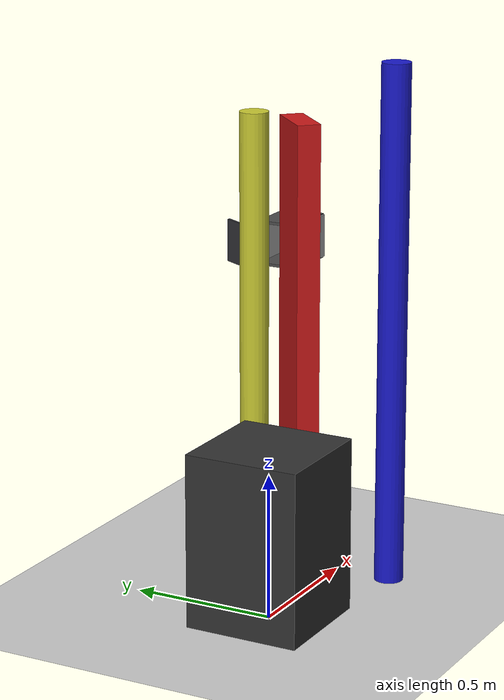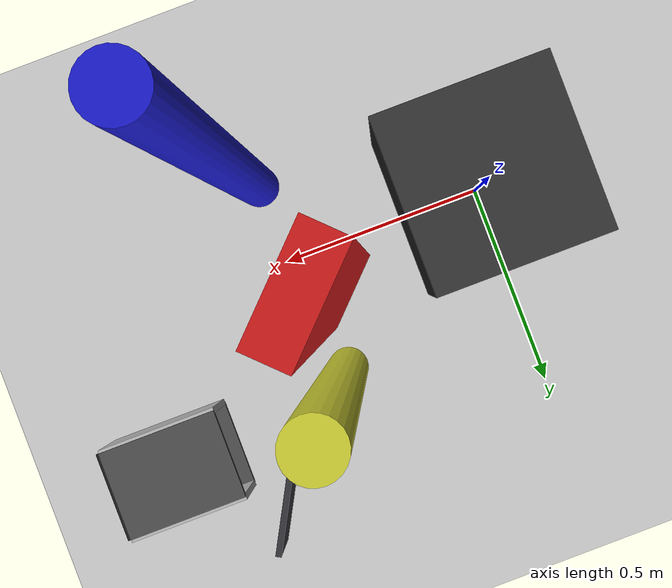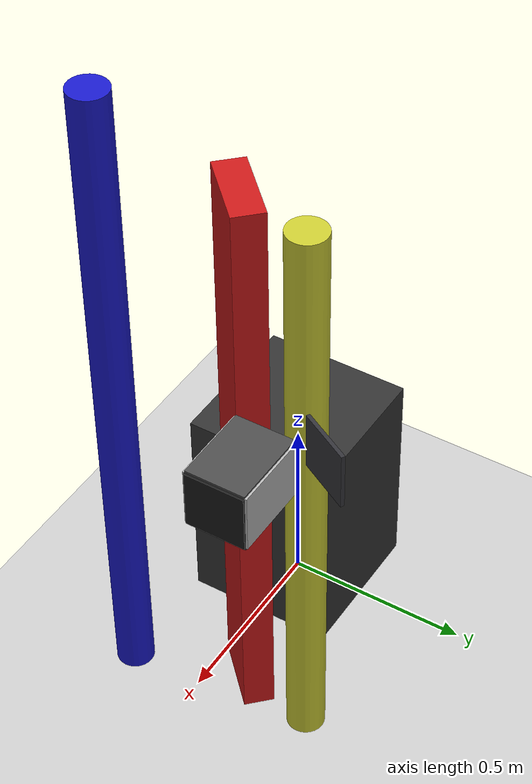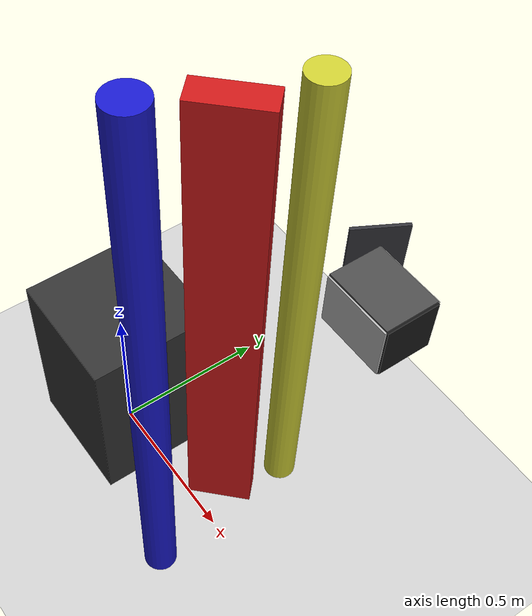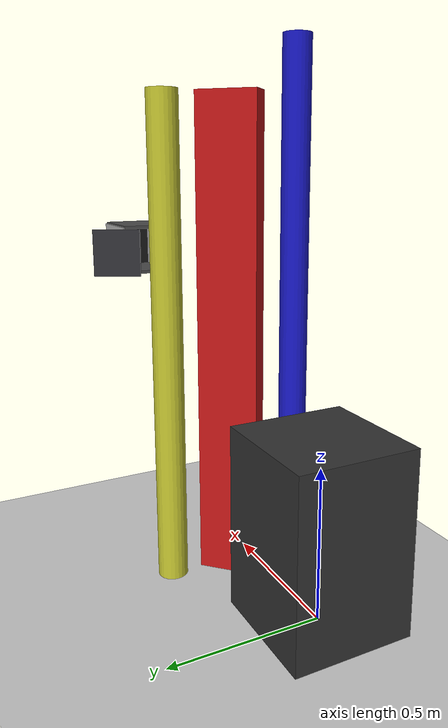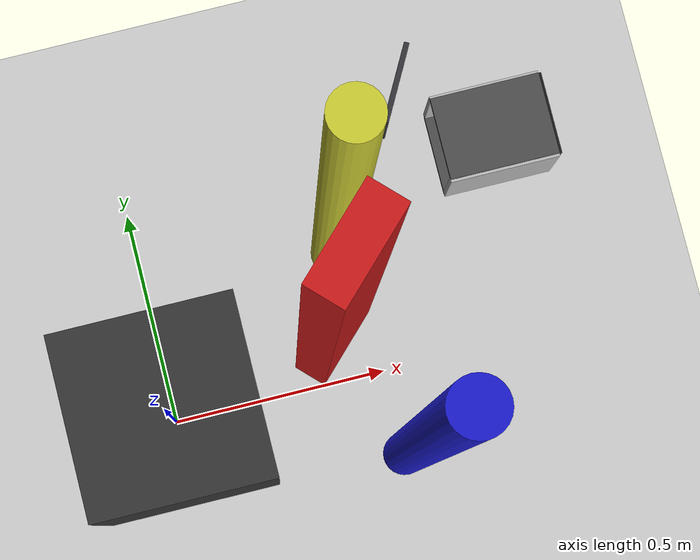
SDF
<?xml version="1.0" ?>
<sdf version="1.9">
  <world name="refuel_world">
    <physics name="1ms" type="ignored">
      <max_step_size>0.001</max_step_size>
      <real_time_factor>1.0</real_time_factor>
    </physics>

    <!-- Required Gz Sim system plugins -->
    <plugin filename="gz-sim-physics-system" name="gz::sim::systems::Physics"/>
    <plugin filename="gz-sim-user-commands-system" name="gz::sim::systems::UserCommands"/>
    <plugin filename="gz-sim-scene-broadcaster-system" name="gz::sim::systems::SceneBroadcaster"/>

    <!-- Sunlight -->
    <light type="directional" name="sun">
      <cast_shadows>true</cast_shadows>
      <pose>0 0 10 0 0 0</pose>
      <diffuse>0.8 0.8 0.8 1</diffuse>
      <specular>0.2 0.2 0.2 1</specular>
      <direction>-0.5 0.1 -0.9</direction>
    </light>

    <!-- Ground plane -->
    <model name="ground_plane">
      <static>true</static>
      <link name="link">
        <collision name="collision">
          <geometry><plane><normal>0 0 1</normal></plane></geometry>
        </collision>
        <visual name="visual">
          <geometry><plane><normal>0 0 1</normal><size>100 100</size></plane></geometry>
          <material><ambient>0.8 0.8 0.8 1</ambient><diffuse>0.8 0.8 0.8 1</diffuse></material>
        </visual>
      </link>
    </model>

    <!-- Robot Pedestal -->
    <model name="robot_pedestal">
      <static>true</static>
      <pose>0 0 0.3 0 0 0</pose>
      <link name="link">
        <visual name="visual">
          <geometry><box><size>0.4 0.4 0.6</size></box></geometry>
          <material><ambient>0.2 0.2 0.2 1</ambient><diffuse>0.2 0.2 0.2 1</diffuse></material>
        </visual>
        <collision name="collision">
          <geometry><box><size>0.4 0.4 0.6</size></box></geometry>
        </collision>
      </link>
    </model>

    <!-- SUV removed — fuel inlet serves as floating target marker -->

    <!-- Refined Concave Socket (Industrial Grade) -->
    <!-- Positioned precisely where the nozzle must enter -->
    <model name="hollow_refuel_inlet">
      <static>true</static>
      <pose>0.62 0.30 1.10 0 0 0</pose>
      <link name="inlet_body">
        <!-- Back Face (Goal) -->
        <visual name="back_visual">
          <pose>0.20 0 0 0 0 0</pose>
          <geometry><box><size>0.01 0.15 0.15</size></box></geometry>
          <material><ambient>0.1 0.1 0.1 1</ambient><diffuse>0.1 0.1 0.1 1</diffuse></material>
        </visual>
        <collision name="back_collision">
          <pose>0.20 0 0 0 0 0</pose>
          <geometry><box><size>0.01 0.15 0.15</size></box></geometry>
        </collision>
        <!-- Surround Walls (20cm Deep) -->
        <visual name="top_wall">
          <pose>0.10 0 0.075 0 0 0</pose>
          <geometry><box><size>0.20 0.15 0.01</size></box></geometry>
          <material><ambient>0.3 0.3 0.3 1</ambient><diffuse>0.3 0.3 0.3 1</diffuse></material>
        </visual>
        <collision name="top_wall_col">
          <pose>0.10 0 0.075 0 0 0</pose>
          <geometry><box><size>0.20 0.15 0.01</size></box></geometry>
        </collision>
        <visual name="bottom_wall">
          <pose>0.10 0 -0.075 0 0 0</pose>
          <geometry><box><size>0.20 0.15 0.01</size></box></geometry>
          <material><ambient>0.3 0.3 0.3 1</ambient><diffuse>0.3 0.3 0.3 1</diffuse></material>
        </visual>
        <collision name="bottom_wall_col">
          <pose>0.10 0 -0.075 0 0 0</pose>
          <geometry><box><size>0.20 0.15 0.01</size></box></geometry>
        </collision>
        <visual name="left_wall">
          <pose>0.10 0.075 0 0 0 0</pose>
          <geometry><box><size>0.20 0.01 0.15</size></box></geometry>
        </visual>
        <collision name="left_wall_col">
          <pose>0.10 0.075 0 0 0 0</pose>
          <geometry><box><size>0.20 0.01 0.15</size></box></geometry>
        </collision>
        <visual name="right_wall">
          <pose>0.10 -0.075 0 0 0 0</pose>
          <geometry><box><size>0.20 0.01 0.15</size></box></geometry>
        </visual>
        <collision name="right_wall_col">
          <pose>0.10 -0.075 0 0 0 0</pose>
          <geometry><box><size>0.20 0.01 0.15</size></box></geometry>
        </collision>
        <!-- Fuel Flap (Convex Obstacle) -->
        <!-- Poised as if the door is open but still obstructing the approach path -->
        <visual name="flap_visual">
          <pose>-0.05 0.12 0 0 0 -0.5</pose> <!-- Angled outwards -->
          <geometry><box><size>0.01 0.15 0.15</size></box></geometry>
          <material><ambient>0.2 0.2 0.22 1</ambient><diffuse>0.2 0.2 0.22 1</diffuse></material>
        </visual>
        <collision name="flap_collision">
          <pose>-0.05 0.12 0 0 0 -0.5</pose>
          <geometry><box><size>0.01 0.15 0.15</size></box></geometry>
        </collision>
      </link>
    </model>

    <!-- Industrial Obstacles (Non-Neural-Network Testbed) -->

    <!-- Static Rectangular Pillar (0.2 x 0.08) -->
    <model name="static_pillar">
      <static>true</static>
      <pose>0.4 0.1 0.8 0 0 0.785</pose> <!-- Rotated 45 deg -->
      <link name="link">
        <visual name="visual">
          <geometry><box><size>0.2 0.08 1.6</size></box></geometry>
          <material><ambient>0.8 0.1 0.1 1</ambient><diffuse>0.8 0.1 0.1 1</diffuse></material>
        </visual>
        <collision name="collision">
          <geometry><box><size>0.2 0.08 1.6</size></box></geometry>
        </collision>
      </link>
    </model>

    <!-- Static Cylinder -->
    <model name="static_cylinder">
      <static>true</static>
      <pose>0.5 -0.2 0.9 0 0 0</pose>
      <link name="link">
        <visual name="visual">
          <geometry><cylinder><radius>0.05</radius><length>1.8</length></cylinder></geometry>
          <material><ambient>0.1 0.1 0.8 1</ambient><diffuse>0.1 0.1 0.8 1</diffuse></material>
        </visual>
        <collision name="collision">
          <geometry><cylinder><radius>0.05</radius><length>1.8</length></cylinder></geometry>
        </collision>
      </link>
    </model>

    <!-- Oscillating Dynamic Cylinder (Prismatic) -->
    <model name="dynamic_cylinder">
      <pose>0.45 0.3 0.8 0 0 0</pose>
      <link name="link">
        <inertial>
          <mass>1.0</mass>
          <inertia><ixx>0.01</ixx><ixy>0</ixy><ixz>0</ixz><iyy>0.01</iyy><iyz>0</iyz><izz>0.01</izz></inertia>
        </inertial>
        <visual name="visual">
          <geometry><cylinder><radius>0.05</radius><length>1.6</length></cylinder></geometry>
          <material><ambient>0.8 0.8 0.2 1</ambient><diffuse>0.8 0.8 0.2 1</diffuse></material>
        </visual>
        <collision name="collision">
          <geometry><cylinder><radius>0.05</radius><length>1.6</length></cylinder></geometry>
        </collision>
      </link>

      <joint name="oscillation_joint" type="prismatic">
        <parent>world</parent>
        <child>link</child>
        <axis>
          <xyz>0 1 0</xyz> <!-- Movement along Y axis -->
          <limit>
            <lower>-0.4</lower>
            <upper>0.4</upper>
          </limit>
        </axis>
      </joint>

      <!-- Basic controller plugin to allow ROS2 command injection -->
      <plugin filename="gz-sim-joint-position-controller-system" name="gz::sim::systems::JointPositionController">
        <joint_name>oscillation_joint</joint_name>
        <topic>/model/dynamic_cylinder/joint/oscillation_joint/0/cmd_pos</topic>
      </plugin>
    </model>

  </world>
</sdf>
